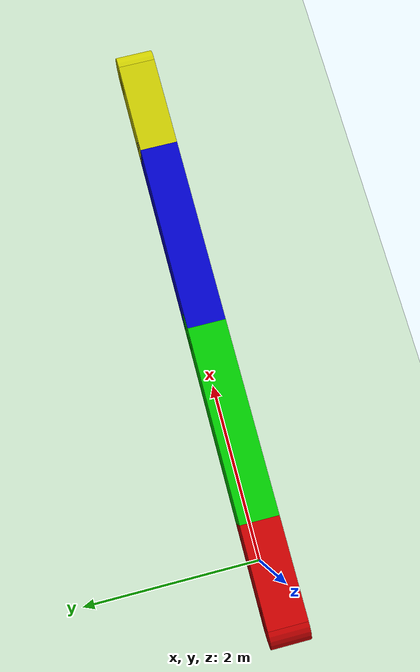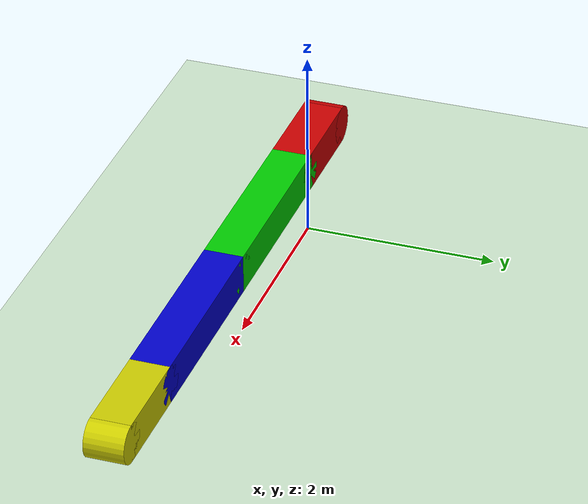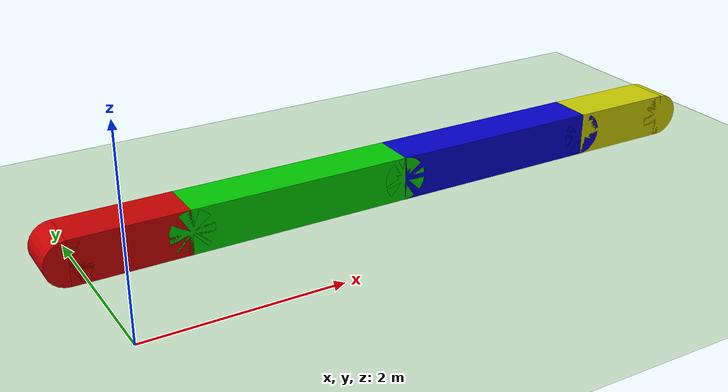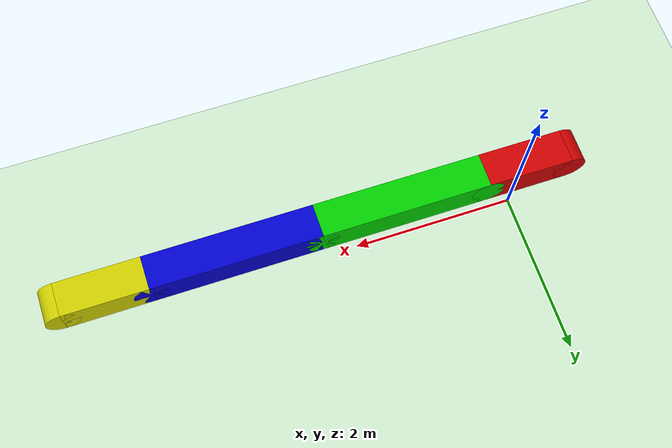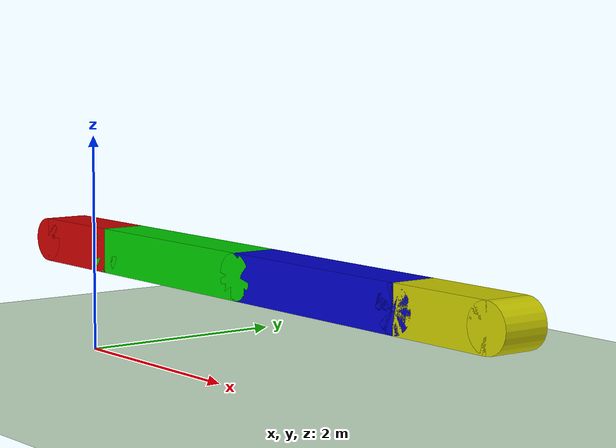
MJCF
<!--An inchworm xml environment in MuJoCo-->

<mujoco model="2d_inchworm">
  <!--
  Inertiafromgeom specifies whether body masses and inertias are inferred from their attached geoms
  or defined by explicit attribute values
  -->
  <compiler angle="degree" inertiafromgeom="true" />

  <!--
  Integrator is for numerical integration, see: https://mujoco.readthedocs.io/en/latest/computation.html#geintegration
  NOTE: timestep must be equal to 1 / (frame_skip * metadata['render_fps'])
  -->
  <option integrator="RK4" timestep="0.002" />

  <!-- Default attribute values for various elements -->
  <default>
    <joint armature="1" damping="1" limited="true" />
    <geom conaffinity="0" condim="3" density="5.0" friction="1 1 1" margin="0.01" rgba="0.8 0.6 0.4 1" />
    <motor ctrllimited="true" ctrlrange="-1.0 1.0" gear="200" />
  </default>

  <!-- Visual textures and materials -->
  <asset>
    <texture builtin="gradient" height="100" rgb1="1 1 1" rgb2="0 0 0" type="skybox" width="100" />
    <texture builtin="checker" height="100" name="texplane" rgb1="0 0 0" rgb2="0.8 0.8 0.8" type="2d" width="100" />

    <!-- Keep values of texrepeat 1.5x those of the floor geom below -->
    <material name="MatPlane" reflectance="0.5" shininess="1" specular="1" texrepeat="600 60" texture="texplane" />
  </asset>

  <!-- The physical environment -->
  <worldbody>
    <!-- Light source -->
    <light cutoff="100" diffuse="1 1 1" dir="-0 0 -1.3" directional="true" exponent="1" pos="0 0 1.3" specular=".1 .1 .1" />

    <!-- Floor -->
    <geom conaffinity="1" condim="3" material="MatPlane" name="floor" pos="0 0 0" rgba="0.8 0.9 0.8 1" size="400 40 1" type="plane" />

    <!-- Segment 1: Left Foot -->
    <body name="left_foot" pos="0 0 1">
      <geom type="cylinder" mass="0" size="0.2" fromto="-0.5 -0.2 0 -0.5 0.2 0" rgba="0.8 0 0 1"/>
      <geom type="box" size="0.5 0.2 0.2" rgba="0.8 0 0 1"/>

      <joint name="hc_joint" type="hinge" armature="0" damping="0" limited="false" margin="0.01" pos="3 0 0" axis="0 1 0" />
      <joint name="hsx_joint" type="slide" armature="0" damping="0" limited="false" margin="0.01" pos="3 0 0" axis="1 0 0" />
      <joint name="hsz_joint" type="slide" armature="0" damping="0" limited="false" margin="0.01" pos="3 0 0" axis="0 0 1" />

      <!-- Segment 2: Left Middle -->
      <body name="left_middle" pos="1.5 0 0">
        <camera name="track" mode="trackcom" pos="1 -10 0.3" xyaxes="1 0 0 0 0 1"/>

        <geom type="cylinder" mass="0" size="0.2" fromto="-1 -0.2 0 -1 0.2 0" rgba="0 0.8 0 1"/>
        <geom type="box" size="1 0.2 0.2" rgba="0 0.8 0 1"/>
        <geom type="cylinder" mass="0" size="0.2" fromto="1 -0.2 0 1 0.2 0" rgba="0 0.8 0 1"/>

        <!-- This joint allows the second segment to hinge off the first -->

        <joint name="left_joint" type="hinge" pos="-1 0 0" axis="0 1 0" range="-90 0" />

        <!-- Segment 3: Right Middle -->
        <body name="right_middle" pos="2 0 0">
          <geom type="box" size="1 0.2 0.2" rgba="0 0 0.8 1"/>
          <geom type="cylinder" mass="0" size="0.2" fromto="1 -0.2 0 1 0.2 0" rgba="0 0 0.8 1"/>

          <!-- This joint allows the third segment to hinge off the second -->
          <joint name="middle_joint" type="hinge" pos="-1 0 0" axis="0 1 0" range="0 150" />

          <!-- Segment 4: Right Foot -->
          <body name="right_foot" pos="1.5 0 0">

            <geom type="box" size="0.5 0.2 0.2" rgba="0.8 0.8 0 1" />
            <geom type="cylinder" mass="0" size="0.2" fromto="0.5 -0.2 0 0.5 0.2 0" rgba="0.8 0.8 0 1"/>

            <!-- This joint allows the fourth segment to hinge off the third -->

            <joint name="right_joint" type="hinge" pos="-0.5 0 0" axis="0 1 0" range="-90 0" />

          </body>
        </body>
      </body>
    </body>
  </worldbody>

  <!-- The actuators (the agent's means of interacting with the environment) -->
  <actuator>
    <!-- Motors for the three joints -->
    <motor joint="left_joint" />
    <motor joint="middle_joint" />
    <motor joint="right_joint" />

    <!-- Adhesion for the two feet (gain is the force of the adhesion) -->
    <adhesion body="left_foot" ctrlrange="0 1" forcelimited="false" gain="10000" />
    <adhesion body="right_foot" ctrlrange="0 1" forcelimited="false" gain="10000" />
  </actuator>
</mujoco>
